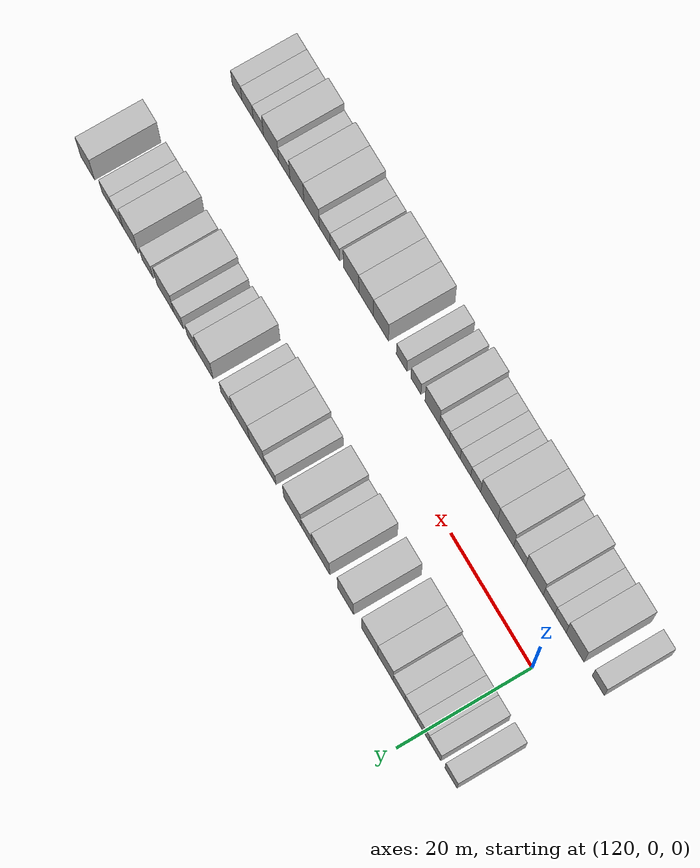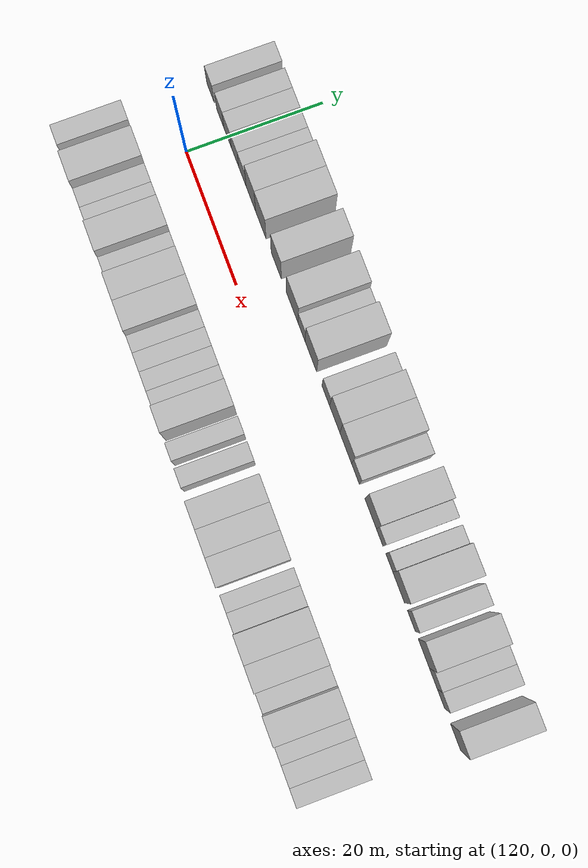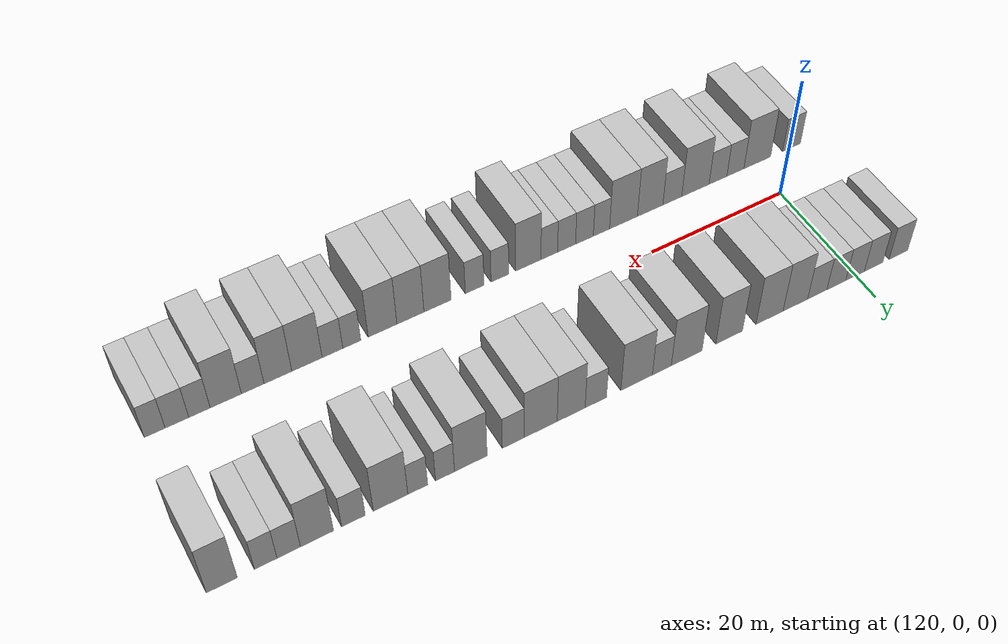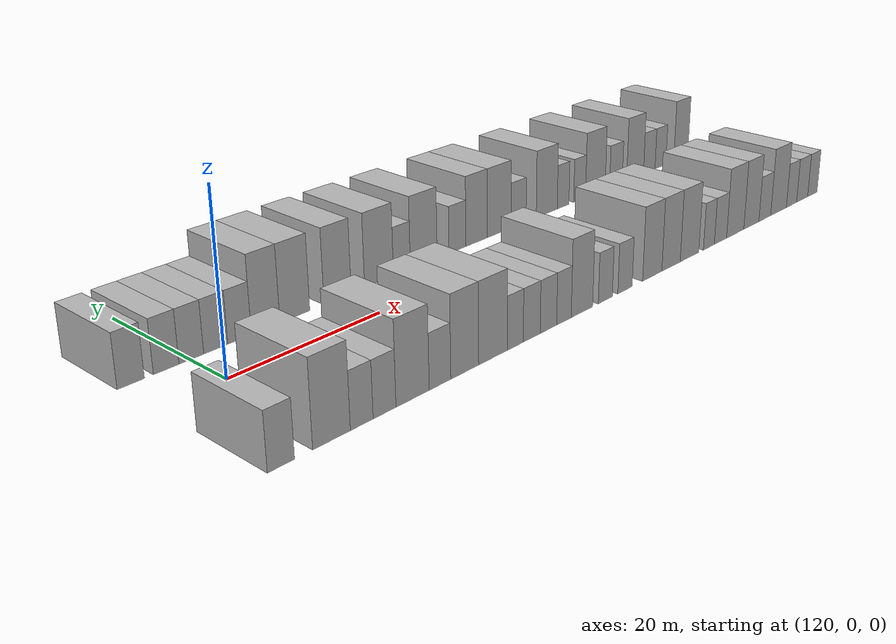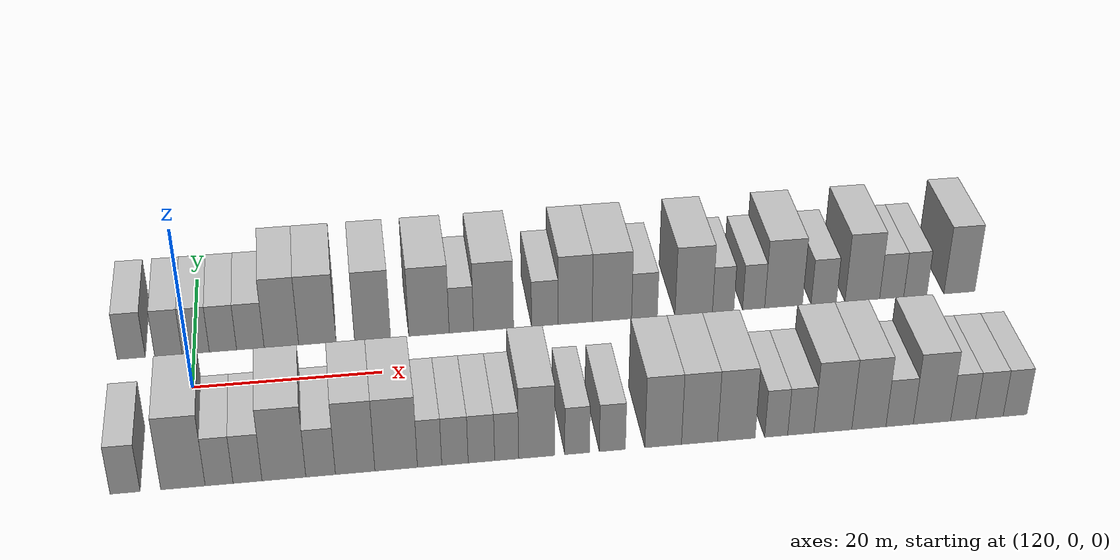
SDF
<sdf version="1.6">
 <world name="default">
  <model name="building_26">
   <static>1</static>
   <pose>113.2875 11.0000 0 0.000000 0.000000 1.570796</pose>
   <link name="link">
    <pose>0 0 3.00 0 0 0</pose>
    <collision name="collision"><geometry><box><size>10.0000 2.9878 6.0000</size></box></geometry></collision>
    <visual name="visual">
     <cast_shadows>0</cast_shadows>
     <geometry><box><size>10.0000 2.9878 6.0000</size></box></geometry>
     <material>
      <script>
       <uri>model://HANNAS_wall/materials/scripts</uri>
       <uri>model://HANNAS_wall/materials/textures</uri>
       <name>vrc/HANNAS_wall</name>
      </script>
     </material>
    </visual>
   </link>
  </model>
  <model name="building_27">
   <static>1</static>
   <pose>117.2467 11.0000 0 0.000000 0.000000 1.570796</pose>
   <link name="link">
    <pose>0 0 3.00 0 0 0</pose>
    <collision name="collision"><geometry><box><size>10.0000 2.9308 6.0000</size></box></geometry></collision>
    <visual name="visual">
     <cast_shadows>0</cast_shadows>
     <geometry><box><size>10.0000 2.9308 6.0000</size></box></geometry>
     <material>
      <script>
       <uri>model://HANNAS_wall/materials/scripts</uri>
       <uri>model://HANNAS_wall/materials/textures</uri>
       <name>vrc/HANNAS_wall</name>
      </script>
     </material>
    </visual>
   </link>
  </model>
  <model name="building_28">
   <static>1</static>
   <pose>120.1706 11.0000 0 0.000000 0.000000 1.570796</pose>
   <link name="link">
    <pose>0 0 3.00 0 0 0</pose>
    <collision name="collision"><geometry><box><size>10.0000 2.9170 6.0000</size></box></geometry></collision>
    <visual name="visual">
     <cast_shadows>0</cast_shadows>
     <geometry><box><size>10.0000 2.9170 6.0000</size></box></geometry>
     <material>
      <script>
       <uri>model://HANNAS_wall/materials/scripts</uri>
       <uri>model://HANNAS_wall/materials/textures</uri>
       <name>vrc/HANNAS_wall</name>
      </script>
     </material>
    </visual>
   </link>
  </model>
  <model name="building_29">
   <static>1</static>
   <pose>123.0961 11.0000 0 0.000000 0.000000 1.570796</pose>
   <link name="link">
    <pose>0 0 3.00 0 0 0</pose>
    <collision name="collision"><geometry><box><size>10.0000 2.9340 6.0000</size></box></geometry></collision>
    <visual name="visual">
     <cast_shadows>0</cast_shadows>
     <geometry><box><size>10.0000 2.9340 6.0000</size></box></geometry>
     <material>
      <script>
       <uri>model://HANNAS_wall/materials/scripts</uri>
       <uri>model://HANNAS_wall/materials/textures</uri>
       <name>vrc/HANNAS_wall</name>
      </script>
     </material>
    </visual>
   </link>
  </model>
  <model name="building_30">
   <static>1</static>
   <pose>126.0458 11.0000 0 0.000000 0.000000 1.570796</pose>
   <link name="link">
    <pose>0 0 3.00 0 0 0</pose>
    <collision name="collision"><geometry><box><size>10.0000 2.9655 6.0000</size></box></geometry></collision>
    <visual name="visual">
     <cast_shadows>0</cast_shadows>
     <geometry><box><size>10.0000 2.9655 6.0000</size></box></geometry>
     <material>
      <script>
       <uri>model://HANNAS_wall/materials/scripts</uri>
       <uri>model://HANNAS_wall/materials/textures</uri>
       <name>vrc/HANNAS_wall</name>
      </script>
     </material>
    </visual>
   </link>
  </model>
  <model name="building_31">
   <static>1</static>
   <pose>129.3973 11.0000 0 0.000000 0.000000 1.570796</pose>
   <link name="link">
    <pose>0 0 4.50 0 0 0</pose>
    <collision name="collision"><geometry><box><size>10.0000 3.7374 9.0000</size></box></geometry></collision>
    <visual name="visual">
     <cast_shadows>0</cast_shadows>
     <geometry><box><size>10.0000 3.7374 9.0000</size></box></geometry>
     <material>
      <script>
       <uri>model://HANNAS_wall/materials/scripts</uri>
       <uri>model://HANNAS_wall/materials/textures</uri>
       <name>vrc/HANNAS_wall</name>
      </script>
     </material>
    </visual>
   </link>
  </model>
  <model name="building_32">
   <static>1</static>
   <pose>133.3034 11.0000 0 0.000000 0.000000 1.570796</pose>
   <link name="link">
    <pose>0 0 4.50 0 0 0</pose>
    <collision name="collision"><geometry><box><size>10.0000 4.0748 9.0000</size></box></geometry></collision>
    <visual name="visual">
     <cast_shadows>0</cast_shadows>
     <geometry><box><size>10.0000 4.0748 9.0000</size></box></geometry>
     <material>
      <script>
       <uri>model://HANNAS_wall/materials/scripts</uri>
       <uri>model://HANNAS_wall/materials/textures</uri>
       <name>vrc/HANNAS_wall</name>
      </script>
     </material>
    </visual>
   </link>
  </model>
  <model name="building_33">
   <static>1</static>
   <pose>139.3110 11.0000 0 0.000000 0.000000 1.570796</pose>
   <link name="link">
    <pose>0 0 4.50 0 0 0</pose>
    <collision name="collision"><geometry><box><size>10.0000 3.9404 9.0000</size></box></geometry></collision>
    <visual name="visual">
     <cast_shadows>0</cast_shadows>
     <geometry><box><size>10.0000 3.9404 9.0000</size></box></geometry>
     <material>
      <script>
       <uri>model://HANNAS_wall/materials/scripts</uri>
       <uri>model://HANNAS_wall/materials/textures</uri>
       <name>vrc/HANNAS_wall</name>
      </script>
     </material>
    </visual>
   </link>
  </model>
  <model name="building_34">
   <static>1</static>
   <pose>145.5009 11.0000 0 0.000000 0.000000 1.570796</pose>
   <link name="link">
    <pose>0 0 4.50 0 0 0</pose>
    <collision name="collision"><geometry><box><size>10.0000 4.4395 9.0000</size></box></geometry></collision>
    <visual name="visual">
     <cast_shadows>0</cast_shadows>
     <geometry><box><size>10.0000 4.4395 9.0000</size></box></geometry>
     <material>
      <script>
       <uri>model://HANNAS_wall/materials/scripts</uri>
       <uri>model://HANNAS_wall/materials/textures</uri>
       <name>vrc/HANNAS_wall</name>
      </script>
     </material>
    </visual>
   </link>
  </model>
  <model name="building_35">
   <static>1</static>
   <pose>149.0695 11.0000 0 0.000000 0.000000 1.570796</pose>
   <link name="link">
    <pose>0 0 3.00 0 0 0</pose>
    <collision name="collision"><geometry><box><size>10.0000 2.6977 6.0000</size></box></geometry></collision>
    <visual name="visual">
     <cast_shadows>0</cast_shadows>
     <geometry><box><size>10.0000 2.6977 6.0000</size></box></geometry>
     <material>
      <script>
       <uri>model://HANNAS_wall/materials/scripts</uri>
       <uri>model://HANNAS_wall/materials/textures</uri>
       <name>vrc/HANNAS_wall</name>
      </script>
     </material>
    </visual>
   </link>
  </model>
  <model name="building_36">
   <static>1</static>
   <pose>152.6333 11.0000 0 0.000000 0.000000 1.570796</pose>
   <link name="link">
    <pose>0 0 4.50 0 0 0</pose>
    <collision name="collision"><geometry><box><size>10.0000 4.4298 9.0000</size></box></geometry></collision>
    <visual name="visual">
     <cast_shadows>0</cast_shadows>
     <geometry><box><size>10.0000 4.4298 9.0000</size></box></geometry>
     <material>
      <script>
       <uri>model://HANNAS_wall/materials/scripts</uri>
       <uri>model://HANNAS_wall/materials/textures</uri>
       <name>vrc/HANNAS_wall</name>
      </script>
     </material>
    </visual>
   </link>
  </model>
  <model name="building_37">
   <static>1</static>
   <pose>158.3237 11.0000 0 0.000000 0.000000 1.570796</pose>
   <link name="link">
    <pose>0 0 3.00 0 0 0</pose>
    <collision name="collision"><geometry><box><size>10.0000 2.9511 6.0000</size></box></geometry></collision>
    <visual name="visual">
     <cast_shadows>0</cast_shadows>
     <geometry><box><size>10.0000 2.9511 6.0000</size></box></geometry>
     <material>
      <script>
       <uri>model://HANNAS_wall/materials/scripts</uri>
       <uri>model://HANNAS_wall/materials/textures</uri>
       <name>vrc/HANNAS_wall</name>
      </script>
     </material>
    </visual>
   </link>
  </model>
  <model name="building_38">
   <static>1</static>
   <pose>161.7104 11.0000 0 0.000000 0.000000 1.570796</pose>
   <link name="link">
    <pose>0 0 4.50 0 0 0</pose>
    <collision name="collision"><geometry><box><size>10.0000 3.8222 9.0000</size></box></geometry></collision>
    <visual name="visual">
     <cast_shadows>0</cast_shadows>
     <geometry><box><size>10.0000 3.8222 9.0000</size></box></geometry>
     <material>
      <script>
       <uri>model://HANNAS_wall/materials/scripts</uri>
       <uri>model://HANNAS_wall/materials/textures</uri>
       <name>vrc/HANNAS_wall</name>
      </script>
     </material>
    </visual>
   </link>
  </model>
  <model name="building_39">
   <static>1</static>
   <pose>165.8333 11.0000 0 0.000000 0.000000 1.570796</pose>
   <link name="link">
    <pose>0 0 4.50 0 0 0</pose>
    <collision name="collision"><geometry><box><size>10.0000 4.4237 9.0000</size></box></geometry></collision>
    <visual name="visual">
     <cast_shadows>0</cast_shadows>
     <geometry><box><size>10.0000 4.4237 9.0000</size></box></geometry>
     <material>
      <script>
       <uri>model://HANNAS_wall/materials/scripts</uri>
       <uri>model://HANNAS_wall/materials/textures</uri>
       <name>vrc/HANNAS_wall</name>
      </script>
     </material>
    </visual>
   </link>
  </model>
  <model name="building_40">
   <static>1</static>
   <pose>169.4979 11.0000 0 0.000000 0.000000 1.570796</pose>
   <link name="link">
    <pose>0 0 3.00 0 0 0</pose>
    <collision name="collision"><geometry><box><size>10.0000 2.9054 6.0000</size></box></geometry></collision>
    <visual name="visual">
     <cast_shadows>0</cast_shadows>
     <geometry><box><size>10.0000 2.9054 6.0000</size></box></geometry>
     <material>
      <script>
       <uri>model://HANNAS_wall/materials/scripts</uri>
       <uri>model://HANNAS_wall/materials/textures</uri>
       <name>vrc/HANNAS_wall</name>
      </script>
     </material>
    </visual>
   </link>
  </model>
  <model name="building_41">
   <static>1</static>
   <pose>175.0765 11.0000 0 0.000000 0.000000 1.570796</pose>
   <link name="link">
    <pose>0 0 4.50 0 0 0</pose>
    <collision name="collision"><geometry><box><size>10.0000 4.2518 9.0000</size></box></geometry></collision>
    <visual name="visual">
     <cast_shadows>0</cast_shadows>
     <geometry><box><size>10.0000 4.2518 9.0000</size></box></geometry>
     <material>
      <script>
       <uri>model://HANNAS_wall/materials/scripts</uri>
       <uri>model://HANNAS_wall/materials/textures</uri>
       <name>vrc/HANNAS_wall</name>
      </script>
     </material>
    </visual>
   </link>
  </model>
  <model name="building_42">
   <static>1</static>
   <pose>178.4176 11.0000 0 0.000000 0.000000 1.570796</pose>
   <link name="link">
    <pose>0 0 3.00 0 0 0</pose>
    <collision name="collision"><geometry><box><size>10.0000 2.4305 6.0000</size></box></geometry></collision>
    <visual name="visual">
     <cast_shadows>0</cast_shadows>
     <geometry><box><size>10.0000 2.4305 6.0000</size></box></geometry>
     <material>
      <script>
       <uri>model://HANNAS_wall/materials/scripts</uri>
       <uri>model://HANNAS_wall/materials/textures</uri>
       <name>vrc/HANNAS_wall</name>
      </script>
     </material>
    </visual>
   </link>
  </model>
  <model name="building_43">
   <static>1</static>
   <pose>181.8957 11.0000 0 0.000000 0.000000 1.570796</pose>
   <link name="link">
    <pose>0 0 3.00 0 0 0</pose>
    <collision name="collision"><geometry><box><size>10.0000 2.5256 6.0000</size></box></geometry></collision>
    <visual name="visual">
     <cast_shadows>0</cast_shadows>
     <geometry><box><size>10.0000 2.5256 6.0000</size></box></geometry>
     <material>
      <script>
       <uri>model://HANNAS_wall/materials/scripts</uri>
       <uri>model://HANNAS_wall/materials/textures</uri>
       <name>vrc/HANNAS_wall</name>
      </script>
     </material>
    </visual>
   </link>
  </model>
  <model name="building_44">
   <static>1</static>
   <pose>185.3221 11.0000 0 0.000000 0.000000 1.570796</pose>
   <link name="link">
    <pose>0 0 4.50 0 0 0</pose>
    <collision name="collision"><geometry><box><size>10.0000 4.3272 9.0000</size></box></geometry></collision>
    <visual name="visual">
     <cast_shadows>0</cast_shadows>
     <geometry><box><size>10.0000 4.3272 9.0000</size></box></geometry>
     <material>
      <script>
       <uri>model://HANNAS_wall/materials/scripts</uri>
       <uri>model://HANNAS_wall/materials/textures</uri>
       <name>vrc/HANNAS_wall</name>
      </script>
     </material>
    </visual>
   </link>
  </model>
  <model name="building_45">
   <static>1</static>
   <pose>189.9409 11.0000 0 0.000000 0.000000 1.570796</pose>
   <link name="link">
    <pose>0 0 3.00 0 0 0</pose>
    <collision name="collision"><geometry><box><size>10.0000 2.9104 6.0000</size></box></geometry></collision>
    <visual name="visual">
     <cast_shadows>0</cast_shadows>
     <geometry><box><size>10.0000 2.9104 6.0000</size></box></geometry>
     <material>
      <script>
       <uri>model://HANNAS_wall/materials/scripts</uri>
       <uri>model://HANNAS_wall/materials/textures</uri>
       <name>vrc/HANNAS_wall</name>
      </script>
     </material>
    </visual>
   </link>
  </model>
  <model name="building_46">
   <static>1</static>
   <pose>194.3989 11.0000 0 0.000000 0.000000 1.570796</pose>
   <link name="link">
    <pose>0 0 4.50 0 0 0</pose>
    <collision name="collision"><geometry><box><size>10.0000 4.0056 9.0000</size></box></geometry></collision>
    <visual name="visual">
     <cast_shadows>0</cast_shadows>
     <geometry><box><size>10.0000 4.0056 9.0000</size></box></geometry>
     <material>
      <script>
       <uri>model://HANNAS_wall/materials/scripts</uri>
       <uri>model://HANNAS_wall/materials/textures</uri>
       <name>vrc/HANNAS_wall</name>
      </script>
     </material>
    </visual>
   </link>
  </model>
  <model name="building_47">
   <static>1</static>
   <pose>197.8041 11.0000 0 0.000000 0.000000 1.570796</pose>
   <link name="link">
    <pose>0 0 3.00 0 0 0</pose>
    <collision name="collision"><geometry><box><size>10.0000 2.8049 6.0000</size></box></geometry></collision>
    <visual name="visual">
     <cast_shadows>0</cast_shadows>
     <geometry><box><size>10.0000 2.8049 6.0000</size></box></geometry>
     <material>
      <script>
       <uri>model://HANNAS_wall/materials/scripts</uri>
       <uri>model://HANNAS_wall/materials/textures</uri>
       <name>vrc/HANNAS_wall</name>
      </script>
     </material>
    </visual>
   </link>
  </model>
  <model name="building_48">
   <static>1</static>
   <pose>200.5468 11.0000 0 0.000000 0.000000 1.570796</pose>
   <link name="link">
    <pose>0 0 3.00 0 0 0</pose>
    <collision name="collision"><geometry><box><size>10.0000 2.6804 6.0000</size></box></geometry></collision>
    <visual name="visual">
     <cast_shadows>0</cast_shadows>
     <geometry><box><size>10.0000 2.6804 6.0000</size></box></geometry>
     <material>
      <script>
       <uri>model://HANNAS_wall/materials/scripts</uri>
       <uri>model://HANNAS_wall/materials/textures</uri>
       <name>vrc/HANNAS_wall</name>
      </script>
     </material>
    </visual>
   </link>
  </model>
  <model name="building_49">
   <static>1</static>
   <pose>205.6979 11.0000 0 0.000000 0.000000 1.570796</pose>
   <link name="link">
    <pose>0 0 4.50 0 0 0</pose>
    <collision name="collision"><geometry><box><size>10.0000 3.6218 9.0000</size></box></geometry></collision>
    <visual name="visual">
     <cast_shadows>0</cast_shadows>
     <geometry><box><size>10.0000 3.6218 9.0000</size></box></geometry>
     <material>
      <script>
       <uri>model://HANNAS_wall/materials/scripts</uri>
       <uri>model://HANNAS_wall/materials/textures</uri>
       <name>vrc/HANNAS_wall</name>
      </script>
     </material>
    </visual>
   </link>
  </model>
  <model name="building_76">
   <static>1</static>
   <pose>113.8075 -11.0000 0 0.000000 0.000000 1.570796</pose>
   <link name="link">
    <pose>0 0 3.00 0 0 0</pose>
    <collision name="collision"><geometry><box><size>10.0000 2.9245 6.0000</size></box></geometry></collision>
    <visual name="visual">
     <cast_shadows>0</cast_shadows>
     <geometry><box><size>10.0000 2.9245 6.0000</size></box></geometry>
     <material>
      <script>
       <uri>model://HANNAS_wall/materials/scripts</uri>
       <uri>model://HANNAS_wall/materials/textures</uri>
       <name>vrc/HANNAS_wall</name>
      </script>
     </material>
    </visual>
   </link>
  </model>
  <model name="building_77">
   <static>1</static>
   <pose>119.4413 -11.0000 0 0.000000 0.000000 1.570796</pose>
   <link name="link">
    <pose>0 0 4.50 0 0 0</pose>
    <collision name="collision"><geometry><box><size>10.0000 4.3432 9.0000</size></box></geometry></collision>
    <visual name="visual">
     <cast_shadows>0</cast_shadows>
     <geometry><box><size>10.0000 4.3432 9.0000</size></box></geometry>
     <material>
      <script>
       <uri>model://HANNAS_wall/materials/scripts</uri>
       <uri>model://HANNAS_wall/materials/textures</uri>
       <name>vrc/HANNAS_wall</name>
      </script>
     </material>
    </visual>
   </link>
  </model>
  <model name="building_78">
   <static>1</static>
   <pose>122.9830 -11.0000 0 0.000000 0.000000 1.570796</pose>
   <link name="link">
    <pose>0 0 3.00 0 0 0</pose>
    <collision name="collision"><geometry><box><size>10.0000 2.7401 6.0000</size></box></geometry></collision>
    <visual name="visual">
     <cast_shadows>0</cast_shadows>
     <geometry><box><size>10.0000 2.7401 6.0000</size></box></geometry>
     <material>
      <script>
       <uri>model://HANNAS_wall/materials/scripts</uri>
       <uri>model://HANNAS_wall/materials/textures</uri>
       <name>vrc/HANNAS_wall</name>
      </script>
     </material>
    </visual>
   </link>
  </model>
  <model name="building_79">
   <static>1</static>
   <pose>125.7765 -11.0000 0 0.000000 0.000000 1.570796</pose>
   <link name="link">
    <pose>0 0 3.00 0 0 0</pose>
    <collision name="collision"><geometry><box><size>10.0000 2.8469 6.0000</size></box></geometry></collision>
    <visual name="visual">
     <cast_shadows>0</cast_shadows>
     <geometry><box><size>10.0000 2.8469 6.0000</size></box></geometry>
     <material>
      <script>
       <uri>model://HANNAS_wall/materials/scripts</uri>
       <uri>model://HANNAS_wall/materials/textures</uri>
       <name>vrc/HANNAS_wall</name>
      </script>
     </material>
    </visual>
   </link>
  </model>
  <model name="building_80">
   <static>1</static>
   <pose>129.3617 -11.0000 0 0.000000 0.000000 1.570796</pose>
   <link name="link">
    <pose>0 0 4.50 0 0 0</pose>
    <collision name="collision"><geometry><box><size>10.0000 4.3233 9.0000</size></box></geometry></collision>
    <visual name="visual">
     <cast_shadows>0</cast_shadows>
     <geometry><box><size>10.0000 4.3233 9.0000</size></box></geometry>
     <material>
      <script>
       <uri>model://HANNAS_wall/materials/scripts</uri>
       <uri>model://HANNAS_wall/materials/textures</uri>
       <name>vrc/HANNAS_wall</name>
      </script>
     </material>
    </visual>
   </link>
  </model>
  <model name="building_81">
   <static>1</static>
   <pose>132.9923 -11.0000 0 0.000000 0.000000 1.570796</pose>
   <link name="link">
    <pose>0 0 3.00 0 0 0</pose>
    <collision name="collision"><geometry><box><size>10.0000 2.9380 6.0000</size></box></geometry></collision>
    <visual name="visual">
     <cast_shadows>0</cast_shadows>
     <geometry><box><size>10.0000 2.9380 6.0000</size></box></geometry>
     <material>
      <script>
       <uri>model://HANNAS_wall/materials/scripts</uri>
       <uri>model://HANNAS_wall/materials/textures</uri>
       <name>vrc/HANNAS_wall</name>
      </script>
     </material>
    </visual>
   </link>
  </model>
  <model name="building_82">
   <static>1</static>
   <pose>136.4278 -11.0000 0 0.000000 0.000000 1.570796</pose>
   <link name="link">
    <pose>0 0 4.50 0 0 0</pose>
    <collision name="collision"><geometry><box><size>10.0000 3.9328 9.0000</size></box></geometry></collision>
    <visual name="visual">
     <cast_shadows>0</cast_shadows>
     <geometry><box><size>10.0000 3.9328 9.0000</size></box></geometry>
     <material>
      <script>
       <uri>model://HANNAS_wall/materials/scripts</uri>
       <uri>model://HANNAS_wall/materials/textures</uri>
       <name>vrc/HANNAS_wall</name>
      </script>
     </material>
    </visual>
   </link>
  </model>
  <model name="building_83">
   <static>1</static>
   <pose>140.5207 -11.0000 0 0.000000 0.000000 1.570796</pose>
   <link name="link">
    <pose>0 0 4.50 0 0 0</pose>
    <collision name="collision"><geometry><box><size>10.0000 4.2531 9.0000</size></box></geometry></collision>
    <visual name="visual">
     <cast_shadows>0</cast_shadows>
     <geometry><box><size>10.0000 4.2531 9.0000</size></box></geometry>
     <material>
      <script>
       <uri>model://HANNAS_wall/materials/scripts</uri>
       <uri>model://HANNAS_wall/materials/textures</uri>
       <name>vrc/HANNAS_wall</name>
      </script>
     </material>
    </visual>
   </link>
  </model>
  <model name="building_84">
   <static>1</static>
   <pose>143.8670 -11.0000 0 0.000000 0.000000 1.570796</pose>
   <link name="link">
    <pose>0 0 3.00 0 0 0</pose>
    <collision name="collision"><geometry><box><size>10.0000 2.4396 6.0000</size></box></geometry></collision>
    <visual name="visual">
     <cast_shadows>0</cast_shadows>
     <geometry><box><size>10.0000 2.4396 6.0000</size></box></geometry>
     <material>
      <script>
       <uri>model://HANNAS_wall/materials/scripts</uri>
       <uri>model://HANNAS_wall/materials/textures</uri>
       <name>vrc/HANNAS_wall</name>
      </script>
     </material>
    </visual>
   </link>
  </model>
  <model name="building_85">
   <static>1</static>
   <pose>146.4170 -11.0000 0 0.000000 0.000000 1.570796</pose>
   <link name="link">
    <pose>0 0 3.00 0 0 0</pose>
    <collision name="collision"><geometry><box><size>10.0000 2.6603 6.0000</size></box></geometry></collision>
    <visual name="visual">
     <cast_shadows>0</cast_shadows>
     <geometry><box><size>10.0000 2.6603 6.0000</size></box></geometry>
     <material>
      <script>
       <uri>model://HANNAS_wall/materials/scripts</uri>
       <uri>model://HANNAS_wall/materials/textures</uri>
       <name>vrc/HANNAS_wall</name>
      </script>
     </material>
    </visual>
   </link>
  </model>
  <model name="building_86">
   <static>1</static>
   <pose>149.0863 -11.0000 0 0.000000 0.000000 1.570796</pose>
   <link name="link">
    <pose>0 0 3.00 0 0 0</pose>
    <collision name="collision"><geometry><box><size>10.0000 2.6783 6.0000</size></box></geometry></collision>
    <visual name="visual">
     <cast_shadows>0</cast_shadows>
     <geometry><box><size>10.0000 2.6783 6.0000</size></box></geometry>
     <material>
      <script>
       <uri>model://HANNAS_wall/materials/scripts</uri>
       <uri>model://HANNAS_wall/materials/textures</uri>
       <name>vrc/HANNAS_wall</name>
      </script>
     </material>
    </visual>
   </link>
  </model>
  <model name="building_87">
   <static>1</static>
   <pose>151.6444 -11.0000 0 0.000000 0.000000 1.570796</pose>
   <link name="link">
    <pose>0 0 3.00 0 0 0</pose>
    <collision name="collision"><geometry><box><size>10.0000 2.4377 6.0000</size></box></geometry></collision>
    <visual name="visual">
     <cast_shadows>0</cast_shadows>
     <geometry><box><size>10.0000 2.4377 6.0000</size></box></geometry>
     <material>
      <script>
       <uri>model://HANNAS_wall/materials/scripts</uri>
       <uri>model://HANNAS_wall/materials/textures</uri>
       <name>vrc/HANNAS_wall</name>
      </script>
     </material>
    </visual>
   </link>
  </model>
  <model name="building_88">
   <static>1</static>
   <pose>154.7080 -11.0000 0 0.000000 0.000000 1.570796</pose>
   <link name="link">
    <pose>0 0 4.50 0 0 0</pose>
    <collision name="collision"><geometry><box><size>10.0000 3.6896 9.0000</size></box></geometry></collision>
    <visual name="visual">
     <cast_shadows>0</cast_shadows>
     <geometry><box><size>10.0000 3.6896 9.0000</size></box></geometry>
     <material>
      <script>
       <uri>model://HANNAS_wall/materials/scripts</uri>
       <uri>model://HANNAS_wall/materials/textures</uri>
       <name>vrc/HANNAS_wall</name>
      </script>
     </material>
    </visual>
   </link>
  </model>
  <model name="building_89">
   <static>1</static>
   <pose>158.8177 -11.0000 0 0.000000 0.000000 1.570796</pose>
   <link name="link">
    <pose>0 0 3.00 0 0 0</pose>
    <collision name="collision"><geometry><box><size>10.0000 2.5297 6.0000</size></box></geometry></collision>
    <visual name="visual">
     <cast_shadows>0</cast_shadows>
     <geometry><box><size>10.0000 2.5297 6.0000</size></box></geometry>
     <material>
      <script>
       <uri>model://HANNAS_wall/materials/scripts</uri>
       <uri>model://HANNAS_wall/materials/textures</uri>
       <name>vrc/HANNAS_wall</name>
      </script>
     </material>
    </visual>
   </link>
  </model>
  <model name="building_90">
   <static>1</static>
   <pose>162.4156 -11.0000 0 0.000000 0.000000 1.570796</pose>
   <link name="link">
    <pose>0 0 3.00 0 0 0</pose>
    <collision name="collision"><geometry><box><size>10.0000 2.6662 6.0000</size></box></geometry></collision>
    <visual name="visual">
     <cast_shadows>0</cast_shadows>
     <geometry><box><size>10.0000 2.6662 6.0000</size></box></geometry>
     <material>
      <script>
       <uri>model://HANNAS_wall/materials/scripts</uri>
       <uri>model://HANNAS_wall/materials/textures</uri>
       <name>vrc/HANNAS_wall</name>
      </script>
     </material>
    </visual>
   </link>
  </model>
  <model name="building_91">
   <static>1</static>
   <pose>167.6402 -11.0000 0 0.000000 0.000000 1.570796</pose>
   <link name="link">
    <pose>0 0 4.50 0 0 0</pose>
    <collision name="collision"><geometry><box><size>10.0000 3.7829 9.0000</size></box></geometry></collision>
    <visual name="visual">
     <cast_shadows>0</cast_shadows>
     <geometry><box><size>10.0000 3.7829 9.0000</size></box></geometry>
     <material>
      <script>
       <uri>model://HANNAS_wall/materials/scripts</uri>
       <uri>model://HANNAS_wall/materials/textures</uri>
       <name>vrc/HANNAS_wall</name>
      </script>
     </material>
    </visual>
   </link>
  </model>
  <model name="building_92">
   <static>1</static>
   <pose>171.3986 -11.0000 0 0.000000 0.000000 1.570796</pose>
   <link name="link">
    <pose>0 0 4.50 0 0 0</pose>
    <collision name="collision"><geometry><box><size>10.0000 3.7339 9.0000</size></box></geometry></collision>
    <visual name="visual">
     <cast_shadows>0</cast_shadows>
     <geometry><box><size>10.0000 3.7339 9.0000</size></box></geometry>
     <material>
      <script>
       <uri>model://HANNAS_wall/materials/scripts</uri>
       <uri>model://HANNAS_wall/materials/textures</uri>
       <name>vrc/HANNAS_wall</name>
      </script>
     </material>
    </visual>
   </link>
  </model>
  <model name="building_93">
   <static>1</static>
   <pose>175.2218 -11.0000 0 0.000000 0.000000 1.570796</pose>
   <link name="link">
    <pose>0 0 4.50 0 0 0</pose>
    <collision name="collision"><geometry><box><size>10.0000 3.9125 9.0000</size></box></geometry></collision>
    <visual name="visual">
     <cast_shadows>0</cast_shadows>
     <geometry><box><size>10.0000 3.9125 9.0000</size></box></geometry>
     <material>
      <script>
       <uri>model://HANNAS_wall/materials/scripts</uri>
       <uri>model://HANNAS_wall/materials/textures</uri>
       <name>vrc/HANNAS_wall</name>
      </script>
     </material>
    </visual>
   </link>
  </model>
  <model name="building_94">
   <static>1</static>
   <pose>179.3802 -11.0000 0 0.000000 0.000000 1.570796</pose>
   <link name="link">
    <pose>0 0 3.00 0 0 0</pose>
    <collision name="collision"><geometry><box><size>10.0000 2.4042 6.0000</size></box></geometry></collision>
    <visual name="visual">
     <cast_shadows>0</cast_shadows>
     <geometry><box><size>10.0000 2.4042 6.0000</size></box></geometry>
     <material>
      <script>
       <uri>model://HANNAS_wall/materials/scripts</uri>
       <uri>model://HANNAS_wall/materials/textures</uri>
       <name>vrc/HANNAS_wall</name>
      </script>
     </material>
    </visual>
   </link>
  </model>
  <model name="building_95">
   <static>1</static>
   <pose>181.9592 -11.0000 0 0.000000 0.000000 1.570796</pose>
   <link name="link">
    <pose>0 0 3.00 0 0 0</pose>
    <collision name="collision"><geometry><box><size>10.0000 2.7539 6.0000</size></box></geometry></collision>
    <visual name="visual">
     <cast_shadows>0</cast_shadows>
     <geometry><box><size>10.0000 2.7539 6.0000</size></box></geometry>
     <material>
      <script>
       <uri>model://HANNAS_wall/materials/scripts</uri>
       <uri>model://HANNAS_wall/materials/textures</uri>
       <name>vrc/HANNAS_wall</name>
      </script>
     </material>
    </visual>
   </link>
  </model>
  <model name="building_96">
   <static>1</static>
   <pose>185.3280 -11.0000 0 0.000000 0.000000 1.570796</pose>
   <link name="link">
    <pose>0 0 4.50 0 0 0</pose>
    <collision name="collision"><geometry><box><size>10.0000 3.9837 9.0000</size></box></geometry></collision>
    <visual name="visual">
     <cast_shadows>0</cast_shadows>
     <geometry><box><size>10.0000 3.9837 9.0000</size></box></geometry>
     <material>
      <script>
       <uri>model://HANNAS_wall/materials/scripts</uri>
       <uri>model://HANNAS_wall/materials/textures</uri>
       <name>vrc/HANNAS_wall</name>
      </script>
     </material>
    </visual>
   </link>
  </model>
  <model name="building_97">
   <static>1</static>
   <pose>189.1283 -11.0000 0 0.000000 0.000000 1.570796</pose>
   <link name="link">
    <pose>0 0 4.50 0 0 0</pose>
    <collision name="collision"><geometry><box><size>10.0000 3.6169 9.0000</size></box></geometry></collision>
    <visual name="visual">
     <cast_shadows>0</cast_shadows>
     <geometry><box><size>10.0000 3.6169 9.0000</size></box></geometry>
     <material>
      <script>
       <uri>model://HANNAS_wall/materials/scripts</uri>
       <uri>model://HANNAS_wall/materials/textures</uri>
       <name>vrc/HANNAS_wall</name>
      </script>
     </material>
    </visual>
   </link>
  </model>
  <model name="building_98">
   <static>1</static>
   <pose>192.3875 -11.0000 0 0.000000 0.000000 1.570796</pose>
   <link name="link">
    <pose>0 0 3.00 0 0 0</pose>
    <collision name="collision"><geometry><box><size>10.0000 2.9014 6.0000</size></box></geometry></collision>
    <visual name="visual">
     <cast_shadows>0</cast_shadows>
     <geometry><box><size>10.0000 2.9014 6.0000</size></box></geometry>
     <material>
      <script>
       <uri>model://HANNAS_wall/materials/scripts</uri>
       <uri>model://HANNAS_wall/materials/textures</uri>
       <name>vrc/HANNAS_wall</name>
      </script>
     </material>
    </visual>
   </link>
  </model>
  <model name="building_99">
   <static>1</static>
   <pose>195.8216 -11.0000 0 0.000000 0.000000 1.570796</pose>
   <link name="link">
    <pose>0 0 4.50 0 0 0</pose>
    <collision name="collision"><geometry><box><size>10.0000 3.9667 9.0000</size></box></geometry></collision>
    <visual name="visual">
     <cast_shadows>0</cast_shadows>
     <geometry><box><size>10.0000 3.9667 9.0000</size></box></geometry>
     <material>
      <script>
       <uri>model://HANNAS_wall/materials/scripts</uri>
       <uri>model://HANNAS_wall/materials/textures</uri>
       <name>vrc/HANNAS_wall</name>
      </script>
     </material>
    </visual>
   </link>
  </model>
  <model name="building_100">
   <static>1</static>
   <pose>199.1478 -11.0000 0 0.000000 0.000000 1.570796</pose>
   <link name="link">
    <pose>0 0 3.00 0 0 0</pose>
    <collision name="collision"><geometry><box><size>10.0000 2.6857 6.0000</size></box></geometry></collision>
    <visual name="visual">
     <cast_shadows>0</cast_shadows>
     <geometry><box><size>10.0000 2.6857 6.0000</size></box></geometry>
     <material>
      <script>
       <uri>model://HANNAS_wall/materials/scripts</uri>
       <uri>model://HANNAS_wall/materials/textures</uri>
       <name>vrc/HANNAS_wall</name>
      </script>
     </material>
    </visual>
   </link>
  </model>
  <model name="building_101">
   <static>1</static>
   <pose>201.9635 -11.0000 0 0.000000 0.000000 1.570796</pose>
   <link name="link">
    <pose>0 0 3.00 0 0 0</pose>
    <collision name="collision"><geometry><box><size>10.0000 2.9456 6.0000</size></box></geometry></collision>
    <visual name="visual">
     <cast_shadows>0</cast_shadows>
     <geometry><box><size>10.0000 2.9456 6.0000</size></box></geometry>
     <material>
      <script>
       <uri>model://HANNAS_wall/materials/scripts</uri>
       <uri>model://HANNAS_wall/materials/textures</uri>
       <name>vrc/HANNAS_wall</name>
      </script>
     </material>
    </visual>
   </link>
  </model>
  <model name="building_102">
   <static>1</static>
   <pose>204.7170 -11.0000 0 0.000000 0.000000 1.570796</pose>
   <link name="link">
    <pose>0 0 3.00 0 0 0</pose>
    <collision name="collision"><geometry><box><size>10.0000 2.5614 6.0000</size></box></geometry></collision>
    <visual name="visual">
     <cast_shadows>0</cast_shadows>
     <geometry><box><size>10.0000 2.5614 6.0000</size></box></geometry>
     <material>
      <script>
       <uri>model://HANNAS_wall/materials/scripts</uri>
       <uri>model://HANNAS_wall/materials/textures</uri>
       <name>vrc/HANNAS_wall</name>
      </script>
     </material>
    </visual>
   </link>
  </model>
 </world>
</sdf>
